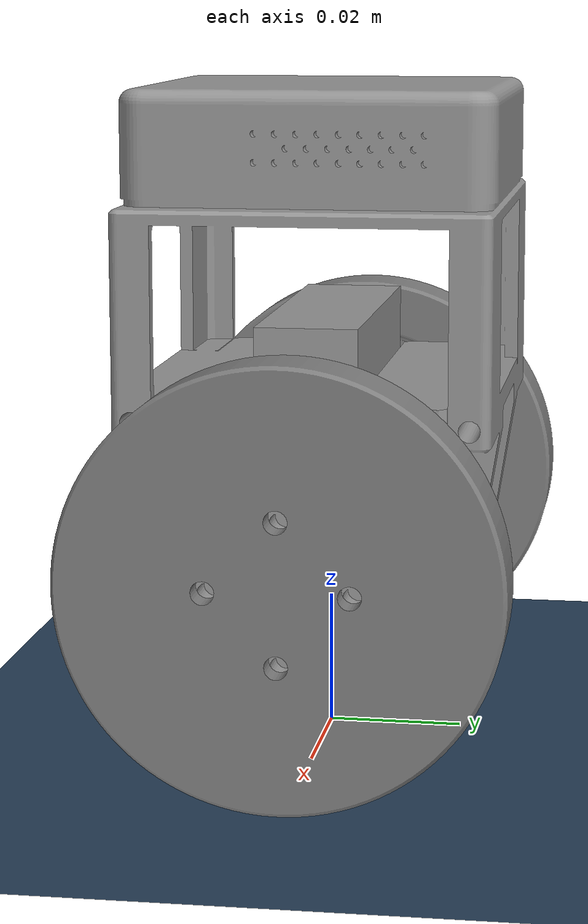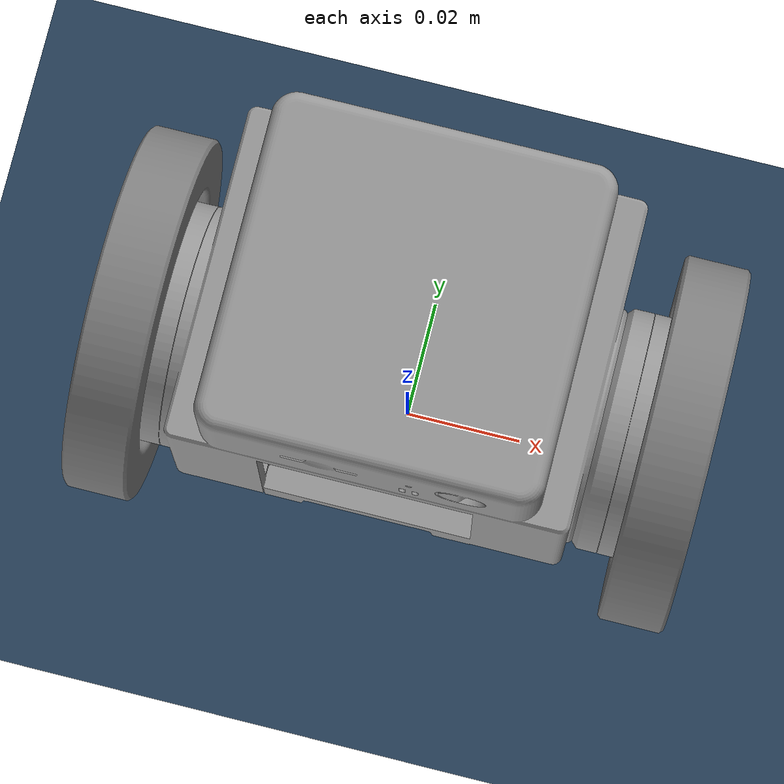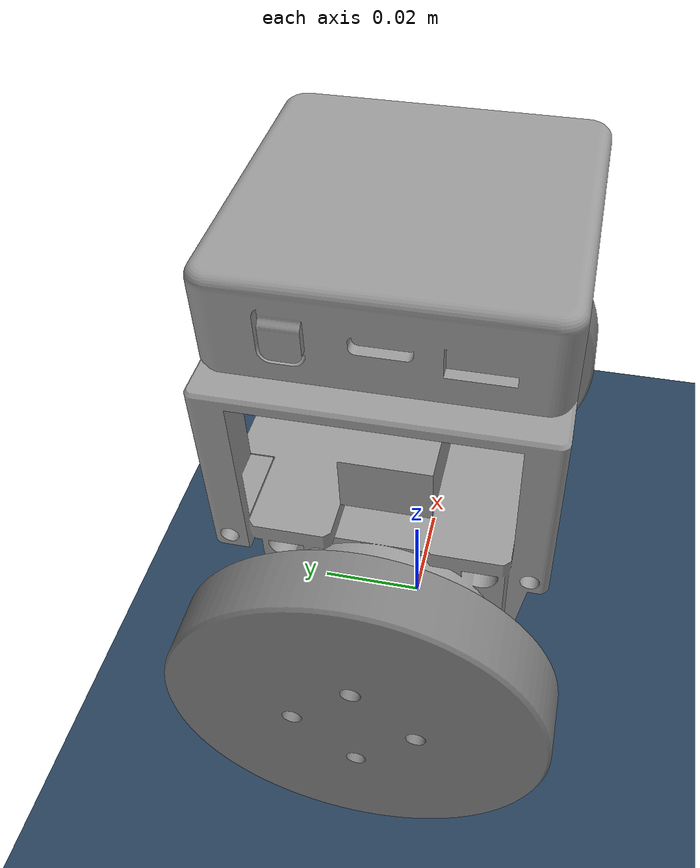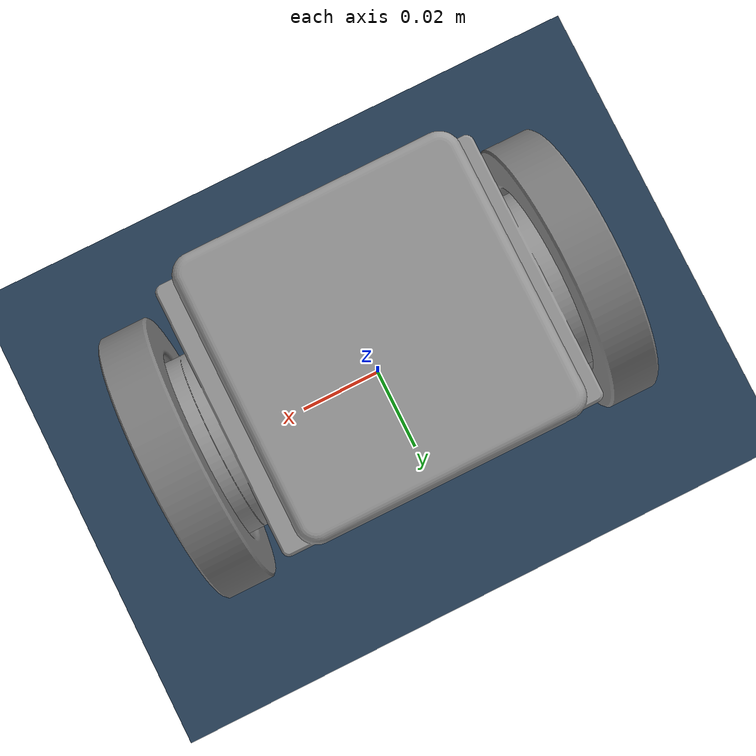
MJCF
<mujoco model="inverted_pendulum_with_mesh">
    <include file="./shared.xml"></include>
    <compiler assetdir="../stl"/>
    <option timestep="0.001" gravity="0 0 -9.81"/>

    <asset>
        <mesh name="body" file="body.stl"/>
        <mesh name="wheel" file="wheel.stl"/>
    </asset>

    <worldbody>
        <!-- 本体(モータ付き) -->
        <body name="base" pos="0 0 0.012">
            <joint type="free"/>
            <inertial mass="0.235724" pos="-1.104e-5 1.555e-5 0.037677" diaginertia="2.064e-4 3.4e-4 2.129e-4"/>
            <geom type="mesh" mesh="body" rgba="0.6 0.6 0.6 1" pos="0 0 0" solref="0.01 1" solimp="0.9 0.95 0.001" contype="1" conaffinity="1"/>
            <site name="imu_site" pos="0 0 0.07"/>

        <!-- タイヤ左 -->
            <body name="wheel_L" pos="-0.047 0 0.0206">
            <joint name="hinge_L" type="hinge" axis="1 0 0" pos="0 0 0" damping="0.00005"/>
            <inertial mass="0.0198" pos="0.562e-3 0 0" diaginertia="1.1786e-5 6.092e-6 6.092e-6"/>
            <geom type="cylinder" size="0.031 0.0055" rgba="0 0 0 0"
                  pos="0.0015 0 0" euler="0 90 0"
                  solref="0.02 1" solimp="0.9 0.95 0.001" friction="1.6 0.005 0.0002" condim="6"
                  contype="1" conaffinity="1" />
            <geom type="mesh" mesh="wheel" contype="0" conaffinity="0" />
            </body>

        <!-- タイヤ右 -->
            <body name="wheel_R" pos="0.047 0 0.0206" euler="0 0 180">
            <joint name="hinge_R" type="hinge" axis="1 0 0" pos="0 0 0" damping="0.00005"/>
            <inertial mass="0.0198" pos="0.562e-3 0 0" diaginertia="1.1786e-5 6.092e-6 6.092e-6"/>
            <geom type="cylinder" size="0.031 0.0055" rgba="0 0 0 0"
                  pos="0.0015 0 0" euler="0 90 0"
                  solref="0.02 1" solimp="0.9 0.95 0.001" friction="1.6 0.005 0.0002" condim="6"
                  contype="1" conaffinity="1" />
            <geom type="mesh" mesh="wheel" contype="0" conaffinity="0" />
            </body>
        </body>

        <!-- 照明 -->
        <light name="light1" pos="0 0 3" dir="0 0 -1" directional="true" castshadow="false" />
    </worldbody>

    <!-- 衝突判定 -->
    <contact>
        <exclude body1="base" body2="wheel_L"/>
        <exclude body1="base" body2="wheel_R"/>
    </contact>

    <!-- モータ -->
    <actuator>
        <general name="wheel_hinge_left" joint="hinge_L"
                ctrlrange="-0.0233 0.0233" ctrllimited="true"
                dyntype="filter" dynprm="0.0055"
                gaintype="fixed" gainprm="1"
                biastype="affine" biasprm="0 -0.000333 0"/>

        <general name="wheel_hinge_right" joint="hinge_R"
                ctrlrange="-0.0233 0.0233" ctrllimited="true"
                dyntype="filter" dynprm="0.0055"
                gaintype="fixed" gainprm="1"
                biastype="affine" biasprm="0 -0.000333 0"/>
    </actuator>

    <!-- センサー -->
    <sensor>
        <accelerometer name="body_accel" site="imu_site" noise="0.0"/>
        <gyro name="body_gyro" site="imu_site" noise="0.0"/>
    </sensor>
</mujoco>

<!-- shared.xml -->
<mujoco>
    <option timestep="0.005" />

    <asset>
        <texture type="skybox" builtin="gradient" rgb1=".3 .5 .7" rgb2="0 0 0" width="512"
            height="512" />
        <texture name="body" type="cube" builtin="flat" mark="cross" width="127" height="1278"
            rgb1="0.8 0.6 0.4" rgb2="0.8 0.6 0.4" markrgb="1 1 1" random="0.01" />
        <material name="body" texture="body" texuniform="true" rgba="0.8 0.6 .4 1" />
        <texture name="grid" type="2d" builtin="checker" width="512" height="512" rgb1=".1 .2 .3"
            rgb2=".2 .3 .4" />
        <material name="grid" texture="grid" texrepeat="1 1" texuniform="true" reflectance=".2" />
    </asset>

    <default>
        <motor ctrlrange="-1 1" ctrllimited="true" />
        <default class="body">
            <geom condim="1" friction=".7" solimp=".9 .99 .003" solref=".015 1" material="body" />
            <joint damping=".02" stiffness=".1" armature=".01" solimplimit="0 .99 .01" />
        </default>
    </default>

    <visual>
        <map force="0.1" zfar="30" />
        <rgba haze="0.15 0.25 0.35 1" />
        <quality shadowsize="4096" />
        <global offwidth="800" offheight="800" />
    </visual>

    <worldbody>
        <geom name="floor" size="0 0 .05" type="plane" material="grid" condim="3" friction="0.8 0.005 0.0001"/>
        <light name="worldlight" directional="true" ambient="0.2 0.2 0.2" diffuse="0.8 0.8 0.8"
            specular="0.3 0.3 0.3" castshadow="false" pos="0 0 4" dir="0 0 -90"></light>
    </worldbody>
</mujoco>
